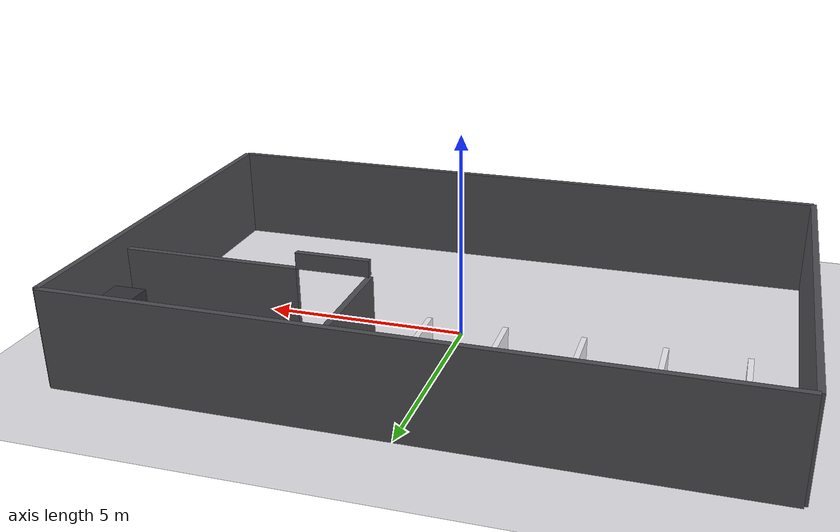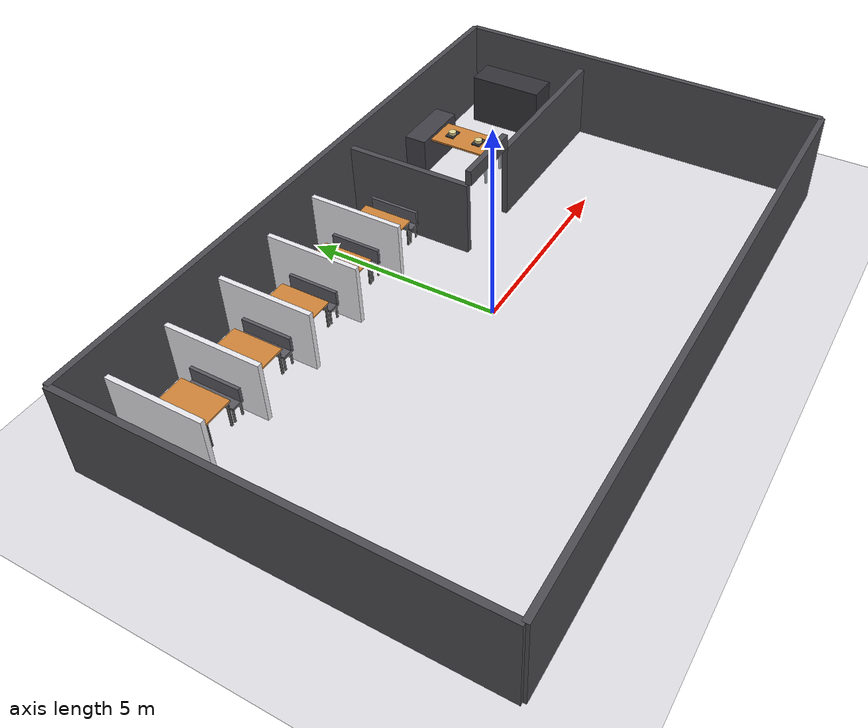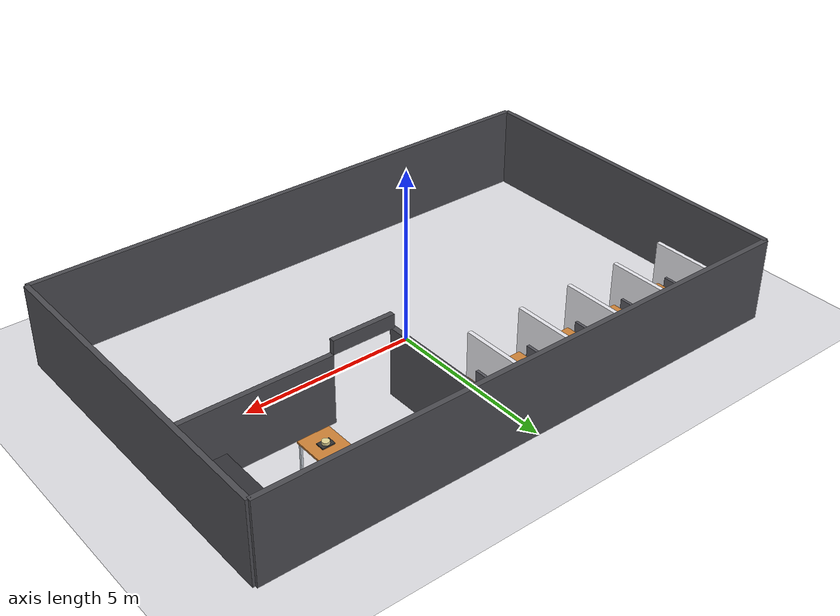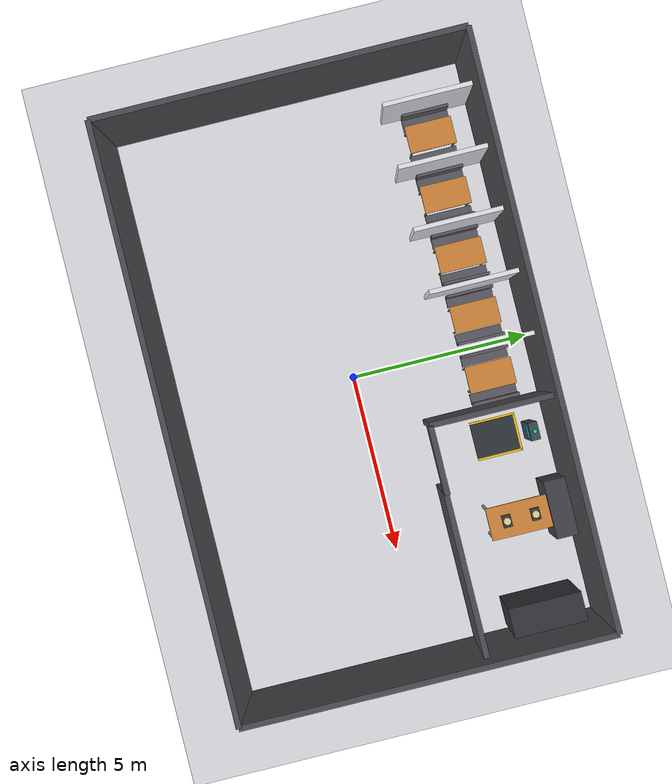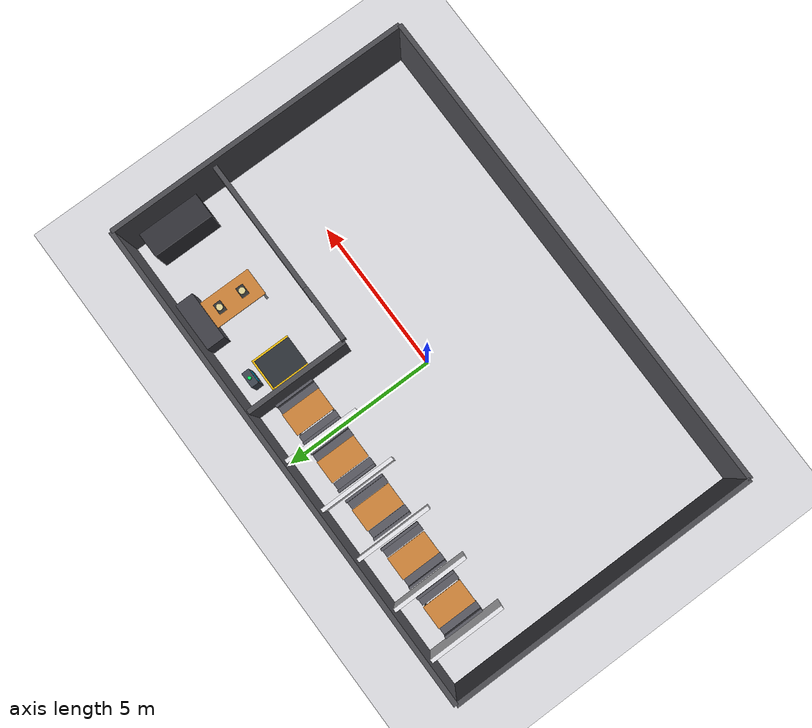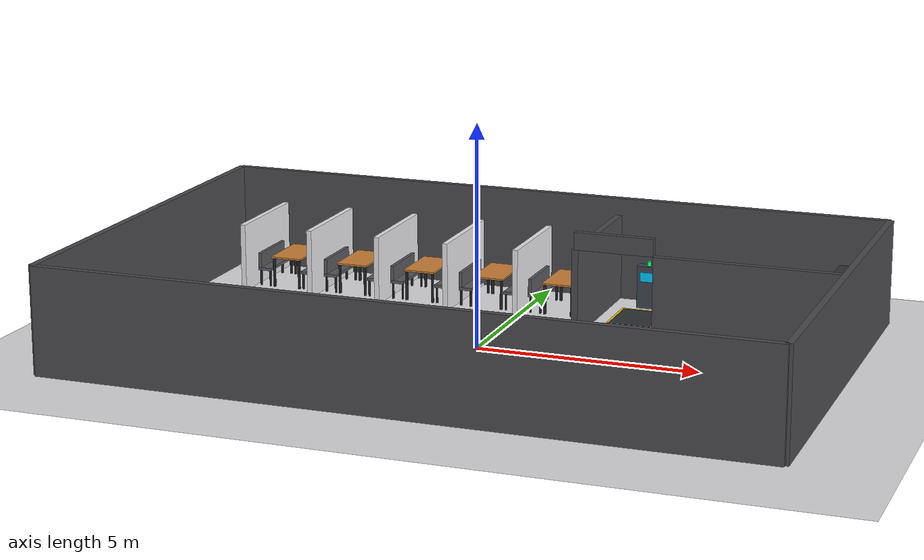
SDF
<sdf version="1.8">
 <world name="restaurant_world">
  <model name="ground_plane">
   <static>true</static>
   <link name="link">
    <collision name="collision">
     <geometry><plane><normal>0 0 1</normal><size>100 100</size></plane></geometry>
    </collision>
    <visual name="visual">
     <geometry><plane><normal>0 0 1</normal><size>100 100</size></plane></geometry>
     <material>
      <ambient>0.88 0.88 0.90 1</ambient>
      <diffuse>0.88 0.88 0.90 1</diffuse>
      <specular>0.1 0.1 0.1 1</specular>
     </material>
    </visual>
   </link>
  </model>
  <model name="restaurant_structure">
   <static>true</static>
   <link name="outer_walls">
    <visual name="wall_north_vis">
     <pose>0 5.0 1.2 0 0 0</pose>
     <geometry><box><size>16.0 0.15 2.4</size></box></geometry>
     <material><ambient>0.3 0.3 0.32 1</ambient><diffuse>0.3 0.3 0.32 1</diffuse></material>
    </visual>
    <collision name="wall_north_col">
     <pose>0 5.0 1.2 0 0 0</pose>
     <geometry><box><size>16.0 0.15 2.4</size></box></geometry>
    </collision>
    <visual name="wall_south_vis">
     <pose>0 -5.0 1.2 0 0 0</pose>
     <geometry><box><size>16.0 0.15 2.4</size></box></geometry>
     <material><ambient>0.3 0.3 0.32 1</ambient><diffuse>0.3 0.3 0.32 1</diffuse></material>
    </visual>
    <collision name="wall_south_col">
     <pose>0 -5.0 1.2 0 0 0</pose>
     <geometry><box><size>16.0 0.15 2.4</size></box></geometry>
    </collision>
    <visual name="wall_west_vis">
     <pose>-8.0 0 1.2 0 0 0</pose>
     <geometry><box><size>0.15 10.0 2.4</size></box></geometry>
     <material><ambient>0.3 0.3 0.32 1</ambient><diffuse>0.3 0.3 0.32 1</diffuse></material>
    </visual>
    <collision name="wall_west_col">
     <pose>-8.0 0 1.2 0 0 0</pose>
     <geometry><box><size>0.15 10.0 2.4</size></box></geometry>
    </collision>
    <visual name="wall_east_vis">
     <pose>8.0 0 1.2 0 0 0</pose>
     <geometry><box><size>0.15 10.0 2.4</size></box></geometry>
     <material><ambient>0.3 0.3 0.32 1</ambient><diffuse>0.3 0.3 0.32 1</diffuse></material>
    </visual>
    <collision name="wall_east_col">
     <pose>8.0 0 1.2 0 0 0</pose>
     <geometry><box><size>0.15 10.0 2.4</size></box></geometry>
    </collision>
   </link>
   <link name="top_partitions">
    <visual name="top_div_1_v">
     <pose>-6.8 3.7 0.8 0 0 0</pose>
     <geometry><box><size>0.12 2.45 1.6</size></box></geometry>
     <material><ambient>0.92 0.92 0.94 1</ambient><diffuse>0.92 0.92 0.94 1</diffuse></material>
    </visual>
    <collision name="top_div_1_c">
     <pose>-6.8 3.7 0.8 0 0 0</pose>
     <geometry><box><size>0.12 2.45 1.6</size></box></geometry>
    </collision>
    <visual name="top_div_2_v">
     <pose>-5.1 3.7 0.8 0 0 0</pose>
     <geometry><box><size>0.12 2.45 1.6</size></box></geometry>
     <material><ambient>0.92 0.92 0.94 1</ambient><diffuse>0.92 0.92 0.94 1</diffuse></material>
    </visual>
    <collision name="top_div_2_c">
     <pose>-5.1 3.7 0.8 0 0 0</pose>
     <geometry><box><size>0.12 2.45 1.6</size></box></geometry>
    </collision>
    <visual name="top_div_3_v">
     <pose>-3.4 3.7 0.8 0 0 0</pose>
     <geometry><box><size>0.12 2.45 1.6</size></box></geometry>
     <material><ambient>0.92 0.92 0.94 1</ambient><diffuse>0.92 0.92 0.94 1</diffuse></material>
    </visual>
    <collision name="top_div_3_c">
     <pose>-3.4 3.7 0.8 0 0 0</pose>
     <geometry><box><size>0.12 2.45 1.6</size></box></geometry>
    </collision>
    <visual name="top_div_4_v">
     <pose>-1.7 3.7 0.8 0 0 0</pose>
     <geometry><box><size>0.12 2.45 1.6</size></box></geometry>
     <material><ambient>0.92 0.92 0.94 1</ambient><diffuse>0.92 0.92 0.94 1</diffuse></material>
    </visual>
    <collision name="top_div_4_c">
     <pose>-1.7 3.7 0.8 0 0 0</pose>
     <geometry><box><size>0.12 2.45 1.6</size></box></geometry>
    </collision>
    <visual name="top_div_5_v">
     <pose>0.0 3.7 0.8 0 0 0</pose>
     <geometry><box><size>0.12 2.45 1.6</size></box></geometry>
     <material><ambient>0.92 0.92 0.94 1</ambient><diffuse>0.92 0.92 0.94 1</diffuse></material>
    </visual>
    <collision name="top_div_5_c">
     <pose>0.0 3.7 0.8 0 0 0</pose>
     <geometry><box><size>0.12 2.45 1.6</size></box></geometry>
    </collision>
    <visual name="top_div_6_v">
     <pose>1.7 3.7 0.8 0 0 0</pose>
     <geometry><box><size>0.12 2.45 1.6</size></box></geometry>
     <material><ambient>0.92 0.92 0.94 1</ambient><diffuse>0.92 0.92 0.94 1</diffuse></material>
    </visual>
    <collision name="top_div_6_c">
     <pose>1.7 3.7 0.8 0 0 0</pose>
     <geometry><box><size>0.12 2.45 1.6</size></box></geometry>
    </collision>
   </link>
   <link name="top_booth_furniture">
    <visual name="tbl_1_top">
     <pose>-5.95 3.65 0.720 0 0 0</pose>
     <geometry><box><size>0.75 1.3 0.04</size></box></geometry>
     <material><ambient>0.82 0.52 0.22 1</ambient><diffuse>0.82 0.52 0.22 1</diffuse></material>
    </visual>
    <collision name="tbl_1_top_c">
     <pose>-5.95 3.65 0.720 0 0 0</pose>
     <geometry><box><size>0.75 1.3 0.04</size></box></geometry>
    </collision>
    <visual name="tbl_1_leg_nw">
     <pose>-6.270 4.245 0.350 0 0 0</pose>
     <geometry><box><size>0.05 0.05 0.700</size></box></geometry>
     <material><ambient>0.15 0.15 0.15 1</ambient><diffuse>0.15 0.15 0.15 1</diffuse></material>
    </visual>
    <collision name="tbl_1_leg_nw_c">
     <pose>-6.270 4.245 0.350 0 0 0</pose>
     <geometry><box><size>0.05 0.05 0.700</size></box></geometry>
    </collision>
    <visual name="tbl_1_leg_ne">
     <pose>-5.630 4.245 0.350 0 0 0</pose>
     <geometry><box><size>0.05 0.05 0.700</size></box></geometry>
     <material><ambient>0.15 0.15 0.15 1</ambient><diffuse>0.15 0.15 0.15 1</diffuse></material>
    </visual>
    <collision name="tbl_1_leg_ne_c">
     <pose>-5.630 4.245 0.350 0 0 0</pose>
     <geometry><box><size>0.05 0.05 0.700</size></box></geometry>
    </collision>
    <visual name="tbl_1_leg_sw">
     <pose>-6.270 3.055 0.350 0 0 0</pose>
     <geometry><box><size>0.05 0.05 0.700</size></box></geometry>
     <material><ambient>0.15 0.15 0.15 1</ambient><diffuse>0.15 0.15 0.15 1</diffuse></material>
    </visual>
    <collision name="tbl_1_leg_sw_c">
     <pose>-6.270 3.055 0.350 0 0 0</pose>
     <geometry><box><size>0.05 0.05 0.700</size></box></geometry>
    </collision>
    <visual name="tbl_1_leg_se">
     <pose>-5.630 3.055 0.350 0 0 0</pose>
     <geometry><box><size>0.05 0.05 0.700</size></box></geometry>
     <material><ambient>0.15 0.15 0.15 1</ambient><diffuse>0.15 0.15 0.15 1</diffuse></material>
    </visual>
    <collision name="tbl_1_leg_se_c">
     <pose>-5.630 3.055 0.350 0 0 0</pose>
     <geometry><box><size>0.05 0.05 0.700</size></box></geometry>
    </collision>
    <visual name="bnch_1_l_seat">
     <pose>-6.5 3.65 0.415 0 0 0</pose>
     <geometry><box><size>0.32 1.3 0.070</size></box></geometry>
     <material><ambient>0.35 0.35 0.38 1</ambient><diffuse>0.35 0.35 0.38 1</diffuse></material>
    </visual>
    <collision name="bnch_1_l_seat_c">
     <pose>-6.5 3.65 0.415 0 0 0</pose>
     <geometry><box><size>0.32 1.3 0.070</size></box></geometry>
    </collision>
    <visual name="bnch_1_l_back">
     <pose>-6.620 3.650 0.625 0 0 0</pose>
     <geometry><box><size>0.08 1.3 0.35</size></box></geometry>
     <material><ambient>0.35 0.35 0.38 1</ambient><diffuse>0.35 0.35 0.38 1</diffuse></material>
    </visual>
    <collision name="bnch_1_l_back_c">
     <pose>-6.620 3.650 0.625 0 0 0</pose>
     <geometry><box><size>0.08 1.3 0.35</size></box></geometry>
    </collision>
    <visual name="bnch_1_l_leg_nw">
     <pose>-6.620 4.240 0.190 0 0 0</pose>
     <geometry><box><size>0.04 0.04 0.380</size></box></geometry>
     <material><ambient>0.15 0.15 0.15 1</ambient><diffuse>0.15 0.15 0.15 1</diffuse></material>
    </visual>
    <collision name="bnch_1_l_leg_nw_c">
     <pose>-6.620 4.240 0.190 0 0 0</pose>
     <geometry><box><size>0.04 0.04 0.380</size></box></geometry>
    </collision>
    <visual name="bnch_1_l_leg_ne">
     <pose>-6.380 4.240 0.190 0 0 0</pose>
     <geometry><box><size>0.04 0.04 0.380</size></box></geometry>
     <material><ambient>0.15 0.15 0.15 1</ambient><diffuse>0.15 0.15 0.15 1</diffuse></material>
    </visual>
    <collision name="bnch_1_l_leg_ne_c">
     <pose>-6.380 4.240 0.190 0 0 0</pose>
     <geometry><box><size>0.04 0.04 0.380</size></box></geometry>
    </collision>
    <visual name="bnch_1_l_leg_sw">
     <pose>-6.620 3.060 0.190 0 0 0</pose>
     <geometry><box><size>0.04 0.04 0.380</size></box></geometry>
     <material><ambient>0.15 0.15 0.15 1</ambient><diffuse>0.15 0.15 0.15 1</diffuse></material>
    </visual>
    <collision name="bnch_1_l_leg_sw_c">
     <pose>-6.620 3.060 0.190 0 0 0</pose>
     <geometry><box><size>0.04 0.04 0.380</size></box></geometry>
    </collision>
    <visual name="bnch_1_l_leg_se">
     <pose>-6.380 3.060 0.190 0 0 0</pose>
     <geometry><box><size>0.04 0.04 0.380</size></box></geometry>
     <material><ambient>0.15 0.15 0.15 1</ambient><diffuse>0.15 0.15 0.15 1</diffuse></material>
    </visual>
    <collision name="bnch_1_l_leg_se_c">
     <pose>-6.380 3.060 0.190 0 0 0</pose>
     <geometry><box><size>0.04 0.04 0.380</size></box></geometry>
    </collision>
    <visual name="bnch_1_r_seat">
     <pose>-5.4 3.65 0.415 0 0 0</pose>
     <geometry><box><size>0.32 1.3 0.070</size></box></geometry>
     <material><ambient>0.35 0.35 0.38 1</ambient><diffuse>0.35 0.35 0.38 1</diffuse></material>
    </visual>
    <collision name="bnch_1_r_seat_c">
     <pose>-5.4 3.65 0.415 0 0 0</pose>
     <geometry><box><size>0.32 1.3 0.070</size></box></geometry>
    </collision>
    <visual name="bnch_1_r_back">
     <pose>-5.280 3.650 0.625 0 0 0</pose>
     <geometry><box><size>0.08 1.3 0.35</size></box></geometry>
     <material><ambient>0.35 0.35 0.38 1</ambient><diffuse>0.35 0.35 0.38 1</diffuse></material>
    </visual>
    <collision name="bnch_1_r_back_c">
     <pose>-5.280 3.650 0.625 0 0 0</pose>
     <geometry><box><size>0.08 1.3 0.35</size></box></geometry>
    </collision>
    <visual name="bnch_1_r_leg_nw">
     <pose>-5.520 4.240 0.190 0 0 0</pose>
     <geometry><box><size>0.04 0.04 0.380</size></box></geometry>
     <material><ambient>0.15 0.15 0.15 1</ambient><diffuse>0.15 0.15 0.15 1</diffuse></material>
    </visual>
    <collision name="bnch_1_r_leg_nw_c">
     <pose>-5.520 4.240 0.190 0 0 0</pose>
     <geometry><box><size>0.04 0.04 0.380</size></box></geometry>
    </collision>
    <visual name="bnch_1_r_leg_ne">
     <pose>-5.280 4.240 0.190 0 0 0</pose>
     <geometry><box><size>0.04 0.04 0.380</size></box></geometry>
     <material><ambient>0.15 0.15 0.15 1</ambient><diffuse>0.15 0.15 0.15 1</diffuse></material>
    </visual>
    <collision name="bnch_1_r_leg_ne_c">
     <pose>-5.280 4.240 0.190 0 0 0</pose>
     <geometry><box><size>0.04 0.04 0.380</size></box></geometry>
    </collision>
    <visual name="bnch_1_r_leg_sw">
     <pose>-5.520 3.060 0.190 0 0 0</pose>
     <geometry><box><size>0.04 0.04 0.380</size></box></geometry>
     <material><ambient>0.15 0.15 0.15 1</ambient><diffuse>0.15 0.15 0.15 1</diffuse></material>
    </visual>
    <collision name="bnch_1_r_leg_sw_c">
     <pose>-5.520 3.060 0.190 0 0 0</pose>
     <geometry><box><size>0.04 0.04 0.380</size></box></geometry>
    </collision>
    <visual name="bnch_1_r_leg_se">
     <pose>-5.280 3.060 0.190 0 0 0</pose>
     <geometry><box><size>0.04 0.04 0.380</size></box></geometry>
     <material><ambient>0.15 0.15 0.15 1</ambient><diffuse>0.15 0.15 0.15 1</diffuse></material>
    </visual>
    <collision name="bnch_1_r_leg_se_c">
     <pose>-5.280 3.060 0.190 0 0 0</pose>
     <geometry><box><size>0.04 0.04 0.380</size></box></geometry>
    </collision>
    <visual name="tbl_2_top">
     <pose>-4.25 3.65 0.720 0 0 0</pose>
     <geometry><box><size>0.75 1.3 0.04</size></box></geometry>
     <material><ambient>0.82 0.52 0.22 1</ambient><diffuse>0.82 0.52 0.22 1</diffuse></material>
    </visual>
    <collision name="tbl_2_top_c">
     <pose>-4.25 3.65 0.720 0 0 0</pose>
     <geometry><box><size>0.75 1.3 0.04</size></box></geometry>
    </collision>
    <visual name="tbl_2_leg_nw">
     <pose>-4.570 4.245 0.350 0 0 0</pose>
     <geometry><box><size>0.05 0.05 0.700</size></box></geometry>
     <material><ambient>0.15 0.15 0.15 1</ambient><diffuse>0.15 0.15 0.15 1</diffuse></material>
    </visual>
    <collision name="tbl_2_leg_nw_c">
     <pose>-4.570 4.245 0.350 0 0 0</pose>
     <geometry><box><size>0.05 0.05 0.700</size></box></geometry>
    </collision>
    <visual name="tbl_2_leg_ne">
     <pose>-3.930 4.245 0.350 0 0 0</pose>
     <geometry><box><size>0.05 0.05 0.700</size></box></geometry>
     <material><ambient>0.15 0.15 0.15 1</ambient><diffuse>0.15 0.15 0.15 1</diffuse></material>
    </visual>
    <collision name="tbl_2_leg_ne_c">
     <pose>-3.930 4.245 0.350 0 0 0</pose>
     <geometry><box><size>0.05 0.05 0.700</size></box></geometry>
    </collision>
    <visual name="tbl_2_leg_sw">
     <pose>-4.570 3.055 0.350 0 0 0</pose>
     <geometry><box><size>0.05 0.05 0.700</size></box></geometry>
     <material><ambient>0.15 0.15 0.15 1</ambient><diffuse>0.15 0.15 0.15 1</diffuse></material>
    </visual>
    <collision name="tbl_2_leg_sw_c">
     <pose>-4.570 3.055 0.350 0 0 0</pose>
     <geometry><box><size>0.05 0.05 0.700</size></box></geometry>
    </collision>
    <visual name="tbl_2_leg_se">
     <pose>-3.930 3.055 0.350 0 0 0</pose>
     <geometry><box><size>0.05 0.05 0.700</size></box></geometry>
     <material><ambient>0.15 0.15 0.15 1</ambient><diffuse>0.15 0.15 0.15 1</diffuse></material>
    </visual>
    <collision name="tbl_2_leg_se_c">
     <pose>-3.930 3.055 0.350 0 0 0</pose>
     <geometry><box><size>0.05 0.05 0.700</size></box></geometry>
    </collision>
    <visual name="bnch_2_l_seat">
     <pose>-4.8 3.65 0.415 0 0 0</pose>
     <geometry><box><size>0.32 1.3 0.070</size></box></geometry>
     <material><ambient>0.35 0.35 0.38 1</ambient><diffuse>0.35 0.35 0.38 1</diffuse></material>
    </visual>
    <collision name="bnch_2_l_seat_c">
     <pose>-4.8 3.65 0.415 0 0 0</pose>
     <geometry><box><size>0.32 1.3 0.070</size></box></geometry>
    </collision>
    <visual name="bnch_2_l_back">
     <pose>-4.920 3.650 0.625 0 0 0</pose>
     <geometry><box><size>0.08 1.3 0.35</size></box></geometry>
     <material><ambient>0.35 0.35 0.38 1</ambient><diffuse>0.35 0.35 0.38 1</diffuse></material>
    </visual>
    <collision name="bnch_2_l_back_c">
     <pose>-4.920 3.650 0.625 0 0 0</pose>
     <geometry><box><size>0.08 1.3 0.35</size></box></geometry>
    </collision>
    <visual name="bnch_2_l_leg_nw">
     <pose>-4.920 4.240 0.190 0 0 0</pose>
     <geometry><box><size>0.04 0.04 0.380</size></box></geometry>
     <material><ambient>0.15 0.15 0.15 1</ambient><diffuse>0.15 0.15 0.15 1</diffuse></material>
    </visual>
    <collision name="bnch_2_l_leg_nw_c">
     <pose>-4.920 4.240 0.190 0 0 0</pose>
     <geometry><box><size>0.04 0.04 0.380</size></box></geometry>
    </collision>
    <visual name="bnch_2_l_leg_ne">
     <pose>-4.680 4.240 0.190 0 0 0</pose>
     <geometry><box><size>0.04 0.04 0.380</size></box></geometry>
     <material><ambient>0.15 0.15 0.15 1</ambient><diffuse>0.15 0.15 0.15 1</diffuse></material>
    </visual>
    <collision name="bnch_2_l_leg_ne_c">
     <pose>-4.680 4.240 0.190 0 0 0</pose>
     <geometry><box><size>0.04 0.04 0.380</size></box></geometry>
    </collision>
    <visual name="bnch_2_l_leg_sw">
     <pose>-4.920 3.060 0.190 0 0 0</pose>
     <geometry><box><size>0.04 0.04 0.380</size></box></geometry>
     <material><ambient>0.15 0.15 0.15 1</ambient><diffuse>0.15 0.15 0.15 1</diffuse></material>
    </visual>
    <collision name="bnch_2_l_leg_sw_c">
     <pose>-4.920 3.060 0.190 0 0 0</pose>
     <geometry><box><size>0.04 0.04 0.380</size></box></geometry>
    </collision>
    <visual name="bnch_2_l_leg_se">
     <pose>-4.680 3.060 0.190 0 0 0</pose>
     <geometry><box><size>0.04 0.04 0.380</size></box></geometry>
     <material><ambient>0.15 0.15 0.15 1</ambient><diffuse>0.15 0.15 0.15 1</diffuse></material>
    </visual>
    <collision name="bnch_2_l_leg_se_c">
     <pose>-4.680 3.060 0.190 0 0 0</pose>
     <geometry><box><size>0.04 0.04 0.380</size></box></geometry>
    </collision>
    <visual name="bnch_2_r_seat">
     <pose>-3.7 3.65 0.415 0 0 0</pose>
     <geometry><box><size>0.32 1.3 0.070</size></box></geometry>
     <material><ambient>0.35 0.35 0.38 1</ambient><diffuse>0.35 0.35 0.38 1</diffuse></material>
    </visual>
    <collision name="bnch_2_r_seat_c">
     <pose>-3.7 3.65 0.415 0 0 0</pose>
     <geometry><box><size>0.32 1.3 0.070</size></box></geometry>
    </collision>
    <visual name="bnch_2_r_back">
     <pose>-3.580 3.650 0.625 0 0 0</pose>
     <geometry><box><size>0.08 1.3 0.35</size></box></geometry>
     <material><ambient>0.35 0.35 0.38 1</ambient><diffuse>0.35 0.35 0.38 1</diffuse></material>
    </visual>
    <collision name="bnch_2_r_back_c">
     <pose>-3.580 3.650 0.625 0 0 0</pose>
     <geometry><box><size>0.08 1.3 0.35</size></box></geometry>
    </collision>
    <visual name="bnch_2_r_leg_nw">
     <pose>-3.820 4.240 0.190 0 0 0</pose>
     <geometry><box><size>0.04 0.04 0.380</size></box></geometry>
     <material><ambient>0.15 0.15 0.15 1</ambient><diffuse>0.15 0.15 0.15 1</diffuse></material>
    </visual>
    <collision name="bnch_2_r_leg_nw_c">
     <pose>-3.820 4.240 0.190 0 0 0</pose>
     <geometry><box><size>0.04 0.04 0.380</size></box></geometry>
    </collision>
    <visual name="bnch_2_r_leg_ne">
     <pose>-3.580 4.240 0.190 0 0 0</pose>
     <geometry><box><size>0.04 0.04 0.380</size></box></geometry>
     <material><ambient>0.15 0.15 0.15 1</ambient><diffuse>0.15 0.15 0.15 1</diffuse></material>
    </visual>
    <collision name="bnch_2_r_leg_ne_c">
     <pose>-3.580 4.240 0.190 0 0 0</pose>
     <geometry><box><size>0.04 0.04 0.380</size></box></geometry>
    </collision>
    <visual name="bnch_2_r_leg_sw">
     <pose>-3.820 3.060 0.190 0 0 0</pose>
     <geometry><box><size>0.04 0.04 0.380</size></box></geometry>
     <material><ambient>0.15 0.15 0.15 1</ambient><diffuse>0.15 0.15 0.15 1</diffuse></material>
    </visual>
    <collision name="bnch_2_r_leg_sw_c">
     <pose>-3.820 3.060 0.190 0 0 0</pose>
     <geometry><box><size>0.04 0.04 0.380</size></box></geometry>
    </collision>
    <visual name="bnch_2_r_leg_se">
     <pose>-3.580 3.060 0.190 0 0 0</pose>
     <geometry><box><size>0.04 0.04 0.380</size></box></geometry>
     <material><ambient>0.15 0.15 0.15 1</ambient><diffuse>0.15 0.15 0.15 1</diffuse></material>
    </visual>
    <collision name="bnch_2_r_leg_se_c">
     <pose>-3.580 3.060 0.190 0 0 0</pose>
     <geometry><box><size>0.04 0.04 0.380</size></box></geometry>
    </collision>
    <visual name="tbl_3_top">
     <pose>-2.55 3.65 0.720 0 0 0</pose>
     <geometry><box><size>0.75 1.3 0.04</size></box></geometry>
     <material><ambient>0.82 0.52 0.22 1</ambient><diffuse>0.82 0.52 0.22 1</diffuse></material>
    </visual>
    <collision name="tbl_3_top_c">
     <pose>-2.55 3.65 0.720 0 0 0</pose>
     <geometry><box><size>0.75 1.3 0.04</size></box></geometry>
    </collision>
    <visual name="tbl_3_leg_nw">
     <pose>-2.870 4.245 0.350 0 0 0</pose>
     <geometry><box><size>0.05 0.05 0.700</size></box></geometry>
     <material><ambient>0.15 0.15 0.15 1</ambient><diffuse>0.15 0.15 0.15 1</diffuse></material>
    </visual>
    <collision name="tbl_3_leg_nw_c">
     <pose>-2.870 4.245 0.350 0 0 0</pose>
     <geometry><box><size>0.05 0.05 0.700</size></box></geometry>
    </collision>
    <visual name="tbl_3_leg_ne">
     <pose>-2.230 4.245 0.350 0 0 0</pose>
     <geometry><box><size>0.05 0.05 0.700</size></box></geometry>
     <material><ambient>0.15 0.15 0.15 1</ambient><diffuse>0.15 0.15 0.15 1</diffuse></material>
    </visual>
    <collision name="tbl_3_leg_ne_c">
     <pose>-2.230 4.245 0.350 0 0 0</pose>
     <geometry><box><size>0.05 0.05 0.700</size></box></geometry>
    </collision>
    <visual name="tbl_3_leg_sw">
     <pose>-2.870 3.055 0.350 0 0 0</pose>
     <geometry><box><size>0.05 0.05 0.700</size></box></geometry>
     <material><ambient>0.15 0.15 0.15 1</ambient><diffuse>0.15 0.15 0.15 1</diffuse></material>
    </visual>
    <collision name="tbl_3_leg_sw_c">
     <pose>-2.870 3.055 0.350 0 0 0</pose>
     <geometry><box><size>0.05 0.05 0.700</size></box></geometry>
    </collision>
    <visual name="tbl_3_leg_se">
     <pose>-2.230 3.055 0.350 0 0 0</pose>
     <geometry><box><size>0.05 0.05 0.700</size></box></geometry>
     <material><ambient>0.15 0.15 0.15 1</ambient><diffuse>0.15 0.15 0.15 1</diffuse></material>
    </visual>
    <collision name="tbl_3_leg_se_c">
     <pose>-2.230 3.055 0.350 0 0 0</pose>
     <geometry><box><size>0.05 0.05 0.700</size></box></geometry>
    </collision>
    <visual name="bnch_3_l_seat">
     <pose>-3.0999999999999996 3.65 0.415 0 0 0</pose>
     <geometry><box><size>0.32 1.3 0.070</size></box></geometry>
     <material><ambient>0.35 0.35 0.38 1</ambient><diffuse>0.35 0.35 0.38 1</diffuse></material>
    </visual>
    <collision name="bnch_3_l_seat_c">
     <pose>-3.0999999999999996 3.65 0.415 0 0 0</pose>
     <geometry><box><size>0.32 1.3 0.070</size></box></geometry>
    </collision>
    <visual name="bnch_3_l_back">
     <pose>-3.220 3.650 0.625 0 0 0</pose>
     <geometry><box><size>0.08 1.3 0.35</size></box></geometry>
     <material><ambient>0.35 0.35 0.38 1</ambient><diffuse>0.35 0.35 0.38 1</diffuse></material>
    </visual>
    <collision name="bnch_3_l_back_c">
     <pose>-3.220 3.650 0.625 0 0 0</pose>
     <geometry><box><size>0.08 1.3 0.35</size></box></geometry>
    </collision>
    <visual name="bnch_3_l_leg_nw">
     <pose>-3.220 4.240 0.190 0 0 0</pose>
     <geometry><box><size>0.04 0.04 0.380</size></box></geometry>
     <material><ambient>0.15 0.15 0.15 1</ambient><diffuse>0.15 0.15 0.15 1</diffuse></material>
    </visual>
    <collision name="bnch_3_l_leg_nw_c">
     <pose>-3.220 4.240 0.190 0 0 0</pose>
     <geometry><box><size>0.04 0.04 0.380</size></box></geometry>
    </collision>
    <visual name="bnch_3_l_leg_ne">
     <pose>-2.980 4.240 0.190 0 0 0</pose>
     <geometry><box><size>0.04 0.04 0.380</size></box></geometry>
     <material><ambient>0.15 0.15 0.15 1</ambient><diffuse>0.15 0.15 0.15 1</diffuse></material>
    </visual>
    <collision name="bnch_3_l_leg_ne_c">
     <pose>-2.980 4.240 0.190 0 0 0</pose>
     <geometry><box><size>0.04 0.04 0.380</size></box></geometry>
    </collision>
    <visual name="bnch_3_l_leg_sw">
     <pose>-3.220 3.060 0.190 0 0 0</pose>
     <geometry><box><size>0.04 0.04 0.380</size></box></geometry>
     <material><ambient>0.15 0.15 0.15 1</ambient><diffuse>0.15 0.15 0.15 1</diffuse></material>
    </visual>
    <collision name="bnch_3_l_leg_sw_c">
     <pose>-3.220 3.060 0.190 0 0 0</pose>
     <geometry><box><size>0.04 0.04 0.380</size></box></geometry>
    </collision>
    <visual name="bnch_3_l_leg_se">
     <pose>-2.980 3.060 0.190 0 0 0</pose>
     <geometry><box><size>0.04 0.04 0.380</size></box></geometry>
     <material><ambient>0.15 0.15 0.15 1</ambient><diffuse>0.15 0.15 0.15 1</diffuse></material>
    </visual>
    <collision name="bnch_3_l_leg_se_c">
     <pose>-2.980 3.060 0.190 0 0 0</pose>
     <geometry><box><size>0.04 0.04 0.380</size></box></geometry>
    </collision>
    <visual name="bnch_3_r_seat">
     <pose>-1.9999999999999998 3.65 0.415 0 0 0</pose>
     <geometry><box><size>0.32 1.3 0.070</size></box></geometry>
     <material><ambient>0.35 0.35 0.38 1</ambient><diffuse>0.35 0.35 0.38 1</diffuse></material>
    </visual>
    <collision name="bnch_3_r_seat_c">
     <pose>-1.9999999999999998 3.65 0.415 0 0 0</pose>
     <geometry><box><size>0.32 1.3 0.070</size></box></geometry>
    </collision>
    <visual name="bnch_3_r_back">
     <pose>-1.880 3.650 0.625 0 0 0</pose>
     <geometry><box><size>0.08 1.3 0.35</size></box></geometry>
     <material><ambient>0.35 0.35 0.38 1</ambient><diffuse>0.35 0.35 0.38 1</diffuse></material>
    </visual>
    <collision name="bnch_3_r_back_c">
     <pose>-1.880 3.650 0.625 0 0 0</pose>
     <geometry><box><size>0.08 1.3 0.35</size></box></geometry>
    </collision>
    <visual name="bnch_3_r_leg_nw">
     <pose>-2.120 4.240 0.190 0 0 0</pose>
     <geometry><box><size>0.04 0.04 0.380</size></box></geometry>
     <material><ambient>0.15 0.15 0.15 1</ambient><diffuse>0.15 0.15 0.15 1</diffuse></material>
    </visual>
    <collision name="bnch_3_r_leg_nw_c">
     <pose>-2.120 4.240 0.190 0 0 0</pose>
     <geometry><box><size>0.04 0.04 0.380</size></box></geometry>
    </collision>
    <visual name="bnch_3_r_leg_ne">
     <pose>-1.880 4.240 0.190 0 0 0</pose>
     <geometry><box><size>0.04 0.04 0.380</size></box></geometry>
     <material><ambient>0.15 0.15 0.15 1</ambient><diffuse>0.15 0.15 0.15 1</diffuse></material>
    </visual>
    <collision name="bnch_3_r_leg_ne_c">
     <pose>-1.880 4.240 0.190 0 0 0</pose>
     <geometry><box><size>0.04 0.04 0.380</size></box></geometry>
    </collision>
    <visual name="bnch_3_r_leg_sw">
     <pose>-2.120 3.060 0.190 0 0 0</pose>
     <geometry><box><size>0.04 0.04 0.380</size></box></geometry>
     <material><ambient>0.15 0.15 0.15 1</ambient><diffuse>0.15 0.15 0.15 1</diffuse></material>
    </visual>
    <collision name="bnch_3_r_leg_sw_c">
     <pose>-2.120 3.060 0.190 0 0 0</pose>
     <geometry><box><size>0.04 0.04 0.380</size></box></geometry>
    </collision>
    <visual name="bnch_3_r_leg_se">
     <pose>-1.880 3.060 0.190 0 0 0</pose>
     <geometry><box><size>0.04 0.04 0.380</size></box></geometry>
     <material><ambient>0.15 0.15 0.15 1</ambient><diffuse>0.15 0.15 0.15 1</diffuse></material>
    </visual>
    <collision name="bnch_3_r_leg_se_c">
     <pose>-1.880 3.060 0.190 0 0 0</pose>
     <geometry><box><size>0.04 0.04 0.380</size></box></geometry>
    </collision>
    <visual name="tbl_4_top">
     <pose>-0.85 3.65 0.720 0 0 0</pose>
     <geometry><box><size>0.75 1.3 0.04</size></box></geometry>
     <material><ambient>0.82 0.52 0.22 1</ambient><diffuse>0.82 0.52 0.22 1</diffuse></material>
    </visual>
    <collision name="tbl_4_top_c">
     <pose>-0.85 3.65 0.720 0 0 0</pose>
     <geometry><box><size>0.75 1.3 0.04</size></box></geometry>
    </collision>
    <visual name="tbl_4_leg_nw">
     <pose>-1.170 4.245 0.350 0 0 0</pose>
     <geometry><box><size>0.05 0.05 0.700</size></box></geometry>
     <material><ambient>0.15 0.15 0.15 1</ambient><diffuse>0.15 0.15 0.15 1</diffuse></material>
    </visual>
    <collision name="tbl_4_leg_nw_c">
     <pose>-1.170 4.245 0.350 0 0 0</pose>
     <geometry><box><size>0.05 0.05 0.700</size></box></geometry>
    </collision>
    <visual name="tbl_4_leg_ne">
     <pose>-0.530 4.245 0.350 0 0 0</pose>
     <geometry><box><size>0.05 0.05 0.700</size></box></geometry>
     <material><ambient>0.15 0.15 0.15 1</ambient><diffuse>0.15 0.15 0.15 1</diffuse></material>
    </visual>
    <collision name="tbl_4_leg_ne_c">
     <pose>-0.530 4.245 0.350 0 0 0</pose>
     <geometry><box><size>0.05 0.05 0.700</size></box></geometry>
    </collision>
    <visual name="tbl_4_leg_sw">
     <pose>-1.170 3.055 0.350 0 0 0</pose>
     <geometry><box><size>0.05 0.05 0.700</size></box></geometry>
     <material><ambient>0.15 0.15 0.15 1</ambient><diffuse>0.15 0.15 0.15 1</diffuse></material>
    </visual>
    <collision name="tbl_4_leg_sw_c">
     <pose>-1.170 3.055 0.350 0 0 0</pose>
     <geometry><box><size>0.05 0.05 0.700</size></box></geometry>
    </collision>
    <visual name="tbl_4_leg_se">
     <pose>-0.530 3.055 0.350 0 0 0</pose>
     <geometry><box><size>0.05 0.05 0.700</size></box></geometry>
     <material><ambient>0.15 0.15 0.15 1</ambient><diffuse>0.15 0.15 0.15 1</diffuse></material>
    </visual>
    <collision name="tbl_4_leg_se_c">
     <pose>-0.530 3.055 0.350 0 0 0</pose>
     <geometry><box><size>0.05 0.05 0.700</size></box></geometry>
    </collision>
    <visual name="bnch_4_l_seat">
     <pose>-1.4 3.65 0.415 0 0 0</pose>
     <geometry><box><size>0.32 1.3 0.070</size></box></geometry>
     <material><ambient>0.35 0.35 0.38 1</ambient><diffuse>0.35 0.35 0.38 1</diffuse></material>
    </visual>
    <collision name="bnch_4_l_seat_c">
     <pose>-1.4 3.65 0.415 0 0 0</pose>
     <geometry><box><size>0.32 1.3 0.070</size></box></geometry>
    </collision>
    <visual name="bnch_4_l_back">
     <pose>-1.520 3.650 0.625 0 0 0</pose>
     <geometry><box><size>0.08 1.3 0.35</size></box></geometry>
     <material><ambient>0.35 0.35 0.38 1</ambient><diffuse>0.35 0.35 0.38 1</diffuse></material>
    </visual>
    <collision name="bnch_4_l_back_c">
     <pose>-1.520 3.650 0.625 0 0 0</pose>
     <geometry><box><size>0.08 1.3 0.35</size></box></geometry>
    </collision>
    <visual name="bnch_4_l_leg_nw">
     <pose>-1.520 4.240 0.190 0 0 0</pose>
     <geometry><box><size>0.04 0.04 0.380</size></box></geometry>
     <material><ambient>0.15 0.15 0.15 1</ambient><diffuse>0.15 0.15 0.15 1</diffuse></material>
    </visual>
    <collision name="bnch_4_l_leg_nw_c">
     <pose>-1.520 4.240 0.190 0 0 0</pose>
     <geometry><box><size>0.04 0.04 0.380</size></box></geometry>
    </collision>
    <visual name="bnch_4_l_leg_ne">
     <pose>-1.280 4.240 0.190 0 0 0</pose>
     <geometry><box><size>0.04 0.04 0.380</size></box></geometry>
     <material><ambient>0.15 0.15 0.15 1</ambient><diffuse>0.15 0.15 0.15 1</diffuse></material>
    </visual>
    <collision name="bnch_4_l_leg_ne_c">
     <pose>-1.280 4.240 0.190 0 0 0</pose>
     <geometry><box><size>0.04 0.04 0.380</size></box></geometry>
    </collision>
    <visual name="bnch_4_l_leg_sw">
     <pose>-1.520 3.060 0.190 0 0 0</pose>
     <geometry><box><size>0.04 0.04 0.380</size></box></geometry>
     <material><ambient>0.15 0.15 0.15 1</ambient><diffuse>0.15 0.15 0.15 1</diffuse></material>
    </visual>
    <collision name="bnch_4_l_leg_sw_c">
     <pose>-1.520 3.060 0.190 0 0 0</pose>
     <geometry><box><size>0.04 0.04 0.380</size></box></geometry>
    </collision>
    <visual name="bnch_4_l_leg_se">
     <pose>-1.280 3.060 0.190 0 0 0</pose>
     <geometry><box><size>0.04 0.04 0.380</size></box></geometry>
     <material><ambient>0.15 0.15 0.15 1</ambient><diffuse>0.15 0.15 0.15 1</diffuse></material>
    </visual>
    <collision name="bnch_4_l_leg_se_c">
     <pose>-1.280 3.060 0.190 0 0 0</pose>
     <geometry><box><size>0.04 0.04 0.380</size></box></geometry>
    </collision>
    <visual name="bnch_4_r_seat">
     <pose>-0.29999999999999993 3.65 0.415 0 0 0</pose>
     <geometry><box><size>0.32 1.3 0.070</size></box></geometry>
     <material><ambient>0.35 0.35 0.38 1</ambient><diffuse>0.35 0.35 0.38 1</diffuse></material>
    </visual>
    <collision name="bnch_4_r_seat_c">
     <pose>-0.29999999999999993 3.65 0.415 0 0 0</pose>
     <geometry><box><size>0.32 1.3 0.070</size></box></geometry>
    </collision>
    <visual name="bnch_4_r_back">
     <pose>-0.180 3.650 0.625 0 0 0</pose>
     <geometry><box><size>0.08 1.3 0.35</size></box></geometry>
     <material><ambient>0.35 0.35 0.38 1</ambient><diffuse>0.35 0.35 0.38 1</diffuse></material>
    </visual>
    <collision name="bnch_4_r_back_c">
     <pose>-0.180 3.650 0.625 0 0 0</pose>
     <geometry><box><size>0.08 1.3 0.35</size></box></geometry>
    </collision>
    <visual name="bnch_4_r_leg_nw">
     <pose>-0.420 4.240 0.190 0 0 0</pose>
     <geometry><box><size>0.04 0.04 0.380</size></box></geometry>
     <material><ambient>0.15 0.15 0.15 1</ambient><diffuse>0.15 0.15 0.15 1</diffuse></material>
    </visual>
    <collision name="bnch_4_r_leg_nw_c">
     <pose>-0.420 4.240 0.190 0 0 0</pose>
     <geometry><box><size>0.04 0.04 0.380</size></box></geometry>
    </collision>
    <visual name="bnch_4_r_leg_ne">
     <pose>-0.180 4.240 0.190 0 0 0</pose>
     <geometry><box><size>0.04 0.04 0.380</size></box></geometry>
     <material><ambient>0.15 0.15 0.15 1</ambient><diffuse>0.15 0.15 0.15 1</diffuse></material>
    </visual>
    <collision name="bnch_4_r_leg_ne_c">
     <pose>-0.180 4.240 0.190 0 0 0</pose>
     <geometry><box><size>0.04 0.04 0.380</size></box></geometry>
    </collision>
    <visual name="bnch_4_r_leg_sw">
     <pose>-0.420 3.060 0.190 0 0 0</pose>
     <geometry><box><size>0.04 0.04 0.380</size></box></geometry>
     <material><ambient>0.15 0.15 0.15 1</ambient><diffuse>0.15 0.15 0.15 1</diffuse></material>
    </visual>
    <collision name="bnch_4_r_leg_sw_c">
     <pose>-0.420 3.060 0.190 0 0 0</pose>
     <geometry><box><size>0.04 0.04 0.380</size></box></geometry>
    </collision>
    <visual name="bnch_4_r_leg_se">
     <pose>-0.180 3.060 0.190 0 0 0</pose>
     <geometry><box><size>0.04 0.04 0.380</size></box></geometry>
     <material><ambient>0.15 0.15 0.15 1</ambient><diffuse>0.15 0.15 0.15 1</diffuse></material>
    </visual>
    <collision name="bnch_4_r_leg_se_c">
     <pose>-0.180 3.060 0.190 0 0 0</pose>
     <geometry><box><size>0.04 0.04 0.380</size></box></geometry>
    </collision>
    <visual name="tbl_5_top">
     <pose>0.85 3.65 0.720 0 0 0</pose>
     <geometry><box><size>0.75 1.3 0.04</size></box></geometry>
     <material><ambient>0.82 0.52 0.22 1</ambient><diffuse>0.82 0.52 0.22 1</diffuse></material>
    </visual>
    <collision name="tbl_5_top_c">
     <pose>0.85 3.65 0.720 0 0 0</pose>
     <geometry><box><size>0.75 1.3 0.04</size></box></geometry>
    </collision>
    <visual name="tbl_5_leg_nw">
     <pose>0.530 4.245 0.350 0 0 0</pose>
     <geometry><box><size>0.05 0.05 0.700</size></box></geometry>
     <material><ambient>0.15 0.15 0.15 1</ambient><diffuse>0.15 0.15 0.15 1</diffuse></material>
    </visual>
    <collision name="tbl_5_leg_nw_c">
     <pose>0.530 4.245 0.350 0 0 0</pose>
     <geometry><box><size>0.05 0.05 0.700</size></box></geometry>
    </collision>
    <visual name="tbl_5_leg_ne">
     <pose>1.170 4.245 0.350 0 0 0</pose>
     <geometry><box><size>0.05 0.05 0.700</size></box></geometry>
     <material><ambient>0.15 0.15 0.15 1</ambient><diffuse>0.15 0.15 0.15 1</diffuse></material>
    </visual>
    <collision name="tbl_5_leg_ne_c">
     <pose>1.170 4.245 0.350 0 0 0</pose>
     <geometry><box><size>0.05 0.05 0.700</size></box></geometry>
    </collision>
    <visual name="tbl_5_leg_sw">
     <pose>0.530 3.055 0.350 0 0 0</pose>
     <geometry><box><size>0.05 0.05 0.700</size></box></geometry>
     <material><ambient>0.15 0.15 0.15 1</ambient><diffuse>0.15 0.15 0.15 1</diffuse></material>
    </visual>
    <collision name="tbl_5_leg_sw_c">
     <pose>0.530 3.055 0.350 0 0 0</pose>
     <geometry><box><size>0.05 0.05 0.700</size></box></geometry>
    </collision>
    <visual name="tbl_5_leg_se">
     <pose>1.170 3.055 0.350 0 0 0</pose>
     <geometry><box><size>0.05 0.05 0.700</size></box></geometry>
     <material><ambient>0.15 0.15 0.15 1</ambient><diffuse>0.15 0.15 0.15 1</diffuse></material>
    </visual>
    <collision name="tbl_5_leg_se_c">
     <pose>1.170 3.055 0.350 0 0 0</pose>
     <geometry><box><size>0.05 0.05 0.700</size></box></geometry>
    </collision>
    <visual name="bnch_5_l_seat">
     <pose>0.29999999999999993 3.65 0.415 0 0 0</pose>
     <geometry><box><size>0.32 1.3 0.070</size></box></geometry>
     <material><ambient>0.35 0.35 0.38 1</ambient><diffuse>0.35 0.35 0.38 1</diffuse></material>
    </visual>
    <collision name="bnch_5_l_seat_c">
     <pose>0.29999999999999993 3.65 0.415 0 0 0</pose>
     <geometry><box><size>0.32 1.3 0.070</size></box></geometry>
    </collision>
    <visual name="bnch_5_l_back">
     <pose>0.180 3.650 0.625 0 0 0</pose>
     <geometry><box><size>0.08 1.3 0.35</size></box></geometry>
     <material><ambient>0.35 0.35 0.38 1</ambient><diffuse>0.35 0.35 0.38 1</diffuse></material>
    </visual>
    <collision name="bnch_5_l_back_c">
     <pose>0.180 3.650 0.625 0 0 0</pose>
     <geometry><box><size>0.08 1.3 0.35</size></box></geometry>
    </collision>
    <visual name="bnch_5_l_leg_nw">
     <pose>0.180 4.240 0.190 0 0 0</pose>
     <geometry><box><size>0.04 0.04 0.380</size></box></geometry>
     <material><ambient>0.15 0.15 0.15 1</ambient><diffuse>0.15 0.15 0.15 1</diffuse></material>
    </visual>
    <collision name="bnch_5_l_leg_nw_c">
     <pose>0.180 4.240 0.190 0 0 0</pose>
     <geometry><box><size>0.04 0.04 0.380</size></box></geometry>
    </collision>
    <visual name="bnch_5_l_leg_ne">
     <pose>0.420 4.240 0.190 0 0 0</pose>
     <geometry><box><size>0.04 0.04 0.380</size></box></geometry>
     <material><ambient>0.15 0.15 0.15 1</ambient><diffuse>0.15 0.15 0.15 1</diffuse></material>
    </visual>
    <collision name="bnch_5_l_leg_ne_c">
     <pose>0.420 4.240 0.190 0 0 0</pose>
     <geometry><box><size>0.04 0.04 0.380</size></box></geometry>
    </collision>
    <visual name="bnch_5_l_leg_sw">
     <pose>0.180 3.060 0.190 0 0 0</pose>
     <geometry><box><size>0.04 0.04 0.380</size></box></geometry>
     <material><ambient>0.15 0.15 0.15 1</ambient><diffuse>0.15 0.15 0.15 1</diffuse></material>
    </visual>
    <collision name="bnch_5_l_leg_sw_c">
     <pose>0.180 3.060 0.190 0 0 0</pose>
     <geometry><box><size>0.04 0.04 0.380</size></box></geometry>
    </collision>
    <visual name="bnch_5_l_leg_se">
     <pose>0.420 3.060 0.190 0 0 0</pose>
     <geometry><box><size>0.04 0.04 0.380</size></box></geometry>
     <material><ambient>0.15 0.15 0.15 1</ambient><diffuse>0.15 0.15 0.15 1</diffuse></material>
    </visual>
    <collision name="bnch_5_l_leg_se_c">
     <pose>0.420 3.060 0.190 0 0 0</pose>
     <geometry><box><size>0.04 0.04 0.380</size></box></geometry>
    </collision>
    <visual name="bnch_5_r_seat">
     <pose>1.4 3.65 0.415 0 0 0</pose>
     <geometry><box><size>0.32 1.3 0.070</size></box></geometry>
     <material><ambient>0.35 0.35 0.38 1</ambient><diffuse>0.35 0.35 0.38 1</diffuse></material>
    </visual>
    <collision name="bnch_5_r_seat_c">
     <pose>1.4 3.65 0.415 0 0 0</pose>
     <geometry><box><size>0.32 1.3 0.070</size></box></geometry>
    </collision>
    <visual name="bnch_5_r_back">
     <pose>1.520 3.650 0.625 0 0 0</pose>
     <geometry><box><size>0.08 1.3 0.35</size></box></geometry>
     <material><ambient>0.35 0.35 0.38 1</ambient><diffuse>0.35 0.35 0.38 1</diffuse></material>
    </visual>
    <collision name="bnch_5_r_back_c">
     <pose>1.520 3.650 0.625 0 0 0</pose>
     <geometry><box><size>0.08 1.3 0.35</size></box></geometry>
    </collision>
    <visual name="bnch_5_r_leg_nw">
     <pose>1.280 4.240 0.190 0 0 0</pose>
     <geometry><box><size>0.04 0.04 0.380</size></box></geometry>
     <material><ambient>0.15 0.15 0.15 1</ambient><diffuse>0.15 0.15 0.15 1</diffuse></material>
    </visual>
    <collision name="bnch_5_r_leg_nw_c">
     <pose>1.280 4.240 0.190 0 0 0</pose>
     <geometry><box><size>0.04 0.04 0.380</size></box></geometry>
    </collision>
    <visual name="bnch_5_r_leg_ne">
     <pose>1.520 4.240 0.190 0 0 0</pose>
     <geometry><box><size>0.04 0.04 0.380</size></box></geometry>
     <material><ambient>0.15 0.15 0.15 1</ambient><diffuse>0.15 0.15 0.15 1</diffuse></material>
    </visual>
    <collision name="bnch_5_r_leg_ne_c">
     <pose>1.520 4.240 0.190 0 0 0</pose>
     <geometry><box><size>0.04 0.04 0.380</size></box></geometry>
    </collision>
    <visual name="bnch_5_r_leg_sw">
     <pose>1.280 3.060 0.190 0 0 0</pose>
     <geometry><box><size>0.04 0.04 0.380</size></box></geometry>
     <material><ambient>0.15 0.15 0.15 1</ambient><diffuse>0.15 0.15 0.15 1</diffuse></material>
    </visual>
    <collision name="bnch_5_r_leg_sw_c">
     <pose>1.280 3.060 0.190 0 0 0</pose>
     <geometry><box><size>0.04 0.04 0.380</size></box></geometry>
    </collision>
    <visual name="bnch_5_r_leg_se">
     <pose>1.520 3.060 0.190 0 0 0</pose>
     <geometry><box><size>0.04 0.04 0.380</size></box></geometry>
     <material><ambient>0.15 0.15 0.15 1</ambient><diffuse>0.15 0.15 0.15 1</diffuse></material>
    </visual>
    <collision name="bnch_5_r_leg_se_c">
     <pose>1.520 3.060 0.190 0 0 0</pose>
     <geometry><box><size>0.04 0.04 0.380</size></box></geometry>
    </collision>
   </link>
   <link name="kitchen_area">
    <visual name="kitch_w_v">
     <pose>1.7 3.3 1.0 0 0 0</pose>
     <geometry><box><size>0.15 3.4 2.0</size></box></geometry>
     <material><ambient>0.3 0.3 0.32 1</ambient><diffuse>0.3 0.3 0.32 1</diffuse></material>
    </visual>
    <collision name="kitch_w_c">
     <pose>1.7 3.3 1.0 0 0 0</pose>
     <geometry><box><size>0.15 3.4 2.0</size></box></geometry>
    </collision>
    <visual name="kitch_s_v">
     <pose>5.75 1.6 1.0 0 0 0</pose>
     <geometry><box><size>4.5 0.15 2.0</size></box></geometry>
     <material><ambient>0.3 0.3 0.32 1</ambient><diffuse>0.3 0.3 0.32 1</diffuse></material>
    </visual>
    <collision name="kitch_s_c">
     <pose>5.75 1.6 1.0 0 0 0</pose>
     <geometry><box><size>4.5 0.15 2.0</size></box></geometry>
    </collision>
    <visual name="kitch_door_lintel">
     <pose>2.6 1.6 2.2 0 0 0</pose>
     <geometry><box><size>1.8 0.15 0.4</size></box></geometry>
     <material><ambient>0.3 0.3 0.32 1</ambient></material>
    </visual>
    <collision name="kitch_door_lintel_c">
     <pose>2.6 1.6 2.2 0 0 0</pose>
     <geometry><box><size>1.8 0.15 0.4</size></box></geometry>
    </collision>
    <visual name="kitch_dispatch_table_top">
     <pose>4.8 3.5 0.880 0 0 0</pose>
     <geometry><box><size>0.9 1.8 0.05</size></box></geometry>
     <material><ambient>0.82 0.52 0.22 1</ambient><diffuse>0.82 0.52 0.22 1</diffuse></material>
    </visual>
    <collision name="kitch_dispatch_table_top_c">
     <pose>4.8 3.5 0.880 0 0 0</pose>
     <geometry><box><size>0.9 1.8 0.05</size></box></geometry>
    </collision>
    <visual name="kitch_dispatch_table_leg_nw">
     <pose>4.410 4.340 0.427 0 0 0</pose>
     <geometry><box><size>0.06 0.06 0.855</size></box></geometry>
     <material><ambient>0.75 0.78 0.82 1</ambient><diffuse>0.75 0.78 0.82 1</diffuse></material>
    </visual>
    <collision name="kitch_dispatch_table_leg_nw_c">
     <pose>4.410 4.340 0.427 0 0 0</pose>
     <geometry><box><size>0.06 0.06 0.855</size></box></geometry>
    </collision>
    <visual name="kitch_dispatch_table_leg_ne">
     <pose>5.190 4.340 0.427 0 0 0</pose>
     <geometry><box><size>0.06 0.06 0.855</size></box></geometry>
     <material><ambient>0.75 0.78 0.82 1</ambient><diffuse>0.75 0.78 0.82 1</diffuse></material>
    </visual>
    <collision name="kitch_dispatch_table_leg_ne_c">
     <pose>5.190 4.340 0.427 0 0 0</pose>
     <geometry><box><size>0.06 0.06 0.855</size></box></geometry>
    </collision>
    <visual name="kitch_dispatch_table_leg_sw">
     <pose>4.410 2.660 0.427 0 0 0</pose>
     <geometry><box><size>0.06 0.06 0.855</size></box></geometry>
     <material><ambient>0.75 0.78 0.82 1</ambient><diffuse>0.75 0.78 0.82 1</diffuse></material>
    </visual>
    <collision name="kitch_dispatch_table_leg_sw_c">
     <pose>4.410 2.660 0.427 0 0 0</pose>
     <geometry><box><size>0.06 0.06 0.855</size></box></geometry>
    </collision>
    <visual name="kitch_dispatch_table_leg_se">
     <pose>5.190 2.660 0.427 0 0 0</pose>
     <geometry><box><size>0.06 0.06 0.855</size></box></geometry>
     <material><ambient>0.75 0.78 0.82 1</ambient><diffuse>0.75 0.78 0.82 1</diffuse></material>
    </visual>
    <collision name="kitch_dispatch_table_leg_se_c">
     <pose>5.190 2.660 0.427 0 0 0</pose>
     <geometry><box><size>0.06 0.06 0.855</size></box></geometry>
    </collision>
    <visual name="kitch_tray_1">
     <pose>4.8 3.1 0.93 0 0 0</pose>
     <geometry><box><size>0.35 0.25 0.03</size></box></geometry>
     <material><ambient>0.2 0.2 0.2 1</ambient></material>
    </visual>
    <visual name="kitch_dish_1">
     <pose>4.8 3.1 0.98 0 0 0</pose>
     <geometry><cylinder><radius>0.10</radius><length>0.08</length></cylinder></geometry>
     <material><ambient>0.9 0.85 0.6 1</ambient><diffuse>0.9 0.85 0.6 1</diffuse></material>
    </visual>
    <visual name="kitch_tray_2">
     <pose>4.8 3.9 0.93 0 0 0</pose>
     <geometry><box><size>0.35 0.25 0.03</size></box></geometry>
     <material><ambient>0.2 0.2 0.2 1</ambient></material>
    </visual>
    <visual name="kitch_dish_2">
     <pose>4.8 3.9 0.98 0 0 0</pose>
     <geometry><cylinder><radius>0.10</radius><length>0.08</length></cylinder></geometry>
     <material><ambient>0.9 0.85 0.6 1</ambient><diffuse>0.9 0.85 0.6 1</diffuse></material>
    </visual>
    <visual name="kitch_shelf_v">
     <pose>7.4 3.5 0.7 0 0 0</pose>
     <geometry><box><size>0.8 2.0 1.4</size></box></geometry>
     <material><ambient>0.2 0.2 0.22 1</ambient><diffuse>0.2 0.2 0.22 1</diffuse></material>
    </visual>
    <collision name="kitch_shelf_c">
     <pose>7.4 3.5 0.7 0 0 0</pose>
     <geometry><box><size>0.8 2.0 1.4</size></box></geometry>
    </collision>
    <visual name="kitch_top_cab">
     <pose>4.8 4.6 0.5 0 0 0</pose>
     <geometry><box><size>1.6 0.6 1.0</size></box></geometry>
     <material><ambient>0.25 0.25 0.28 1</ambient></material>
    </visual>
    <collision name="kitch_top_cab_c">
     <pose>4.8 4.6 0.5 0 0 0</pose>
     <geometry><box><size>1.6 0.6 1.0</size></box></geometry>
    </collision>
    <visual name="home_pad">
     <pose>2.6 3.5 0.002 0 0 0</pose>
     <geometry><box><size>1.1 1.3 0.004</size></box></geometry>
     <material><ambient>0.18 0.20 0.22 1</ambient><diffuse>0.18 0.20 0.22 1</diffuse></material>
    </visual>
    <visual name="home_stripe_l">
     <pose>2.08 3.5 0.003 0 0 0</pose>
     <geometry><box><size>0.06 1.3 0.004</size></box></geometry>
     <material><ambient>0.95 0.75 0.05 1</ambient><diffuse>0.95 0.75 0.05 1</diffuse></material>
    </visual>
    <visual name="home_stripe_r">
     <pose>3.12 3.5 0.003 0 0 0</pose>
     <geometry><box><size>0.06 1.3 0.004</size></box></geometry>
     <material><ambient>0.95 0.75 0.05 1</ambient><diffuse>0.95 0.75 0.05 1</diffuse></material>
    </visual>
    <visual name="home_stripe_back">
     <pose>2.6 4.12 0.003 0 0 0</pose>
     <geometry><box><size>1.1 0.06 0.004</size></box></geometry>
     <material><ambient>0.95 0.75 0.05 1</ambient><diffuse>0.95 0.75 0.05 1</diffuse></material>
    </visual>
    <visual name="charge_tower">
     <pose>2.6 4.4 0.50 0 0 0</pose>
     <geometry><box><size>0.50 0.25 1.00</size></box></geometry>
     <material><ambient>0.25 0.28 0.32 1</ambient><diffuse>0.25 0.28 0.32 1</diffuse></material>
    </visual>
    <collision name="charge_tower_c">
     <pose>2.6 4.4 0.50 0 0 0</pose>
     <geometry><box><size>0.50 0.25 1.00</size></box></geometry>
    </collision>
    <visual name="charge_screen">
     <pose>2.6 4.27 0.75 0 0 0</pose>
     <geometry><box><size>0.35 0.02 0.22</size></box></geometry>
     <material><ambient>0.0 0.8 1.0 1</ambient><emissive>0.0 0.8 1.0 1</emissive></material>
    </visual>
    <visual name="charge_beacon">
     <pose>2.6 4.4 1.05 0 0 0</pose>
     <geometry><cylinder><radius>0.05</radius><length>0.10</length></cylinder></geometry>
     <material><ambient>0.0 1.0 0.4 1</ambient><emissive>0.0 1.0 0.4 1</emissive></material>
    </visual>
   </link>
  </model>
 </world>
</sdf>
